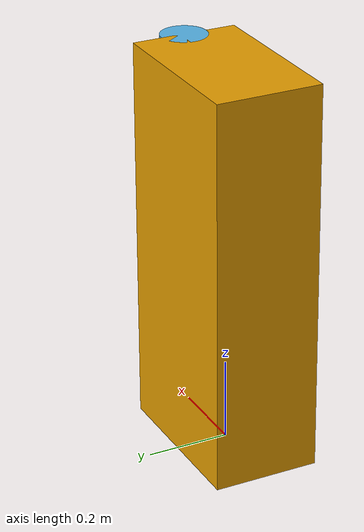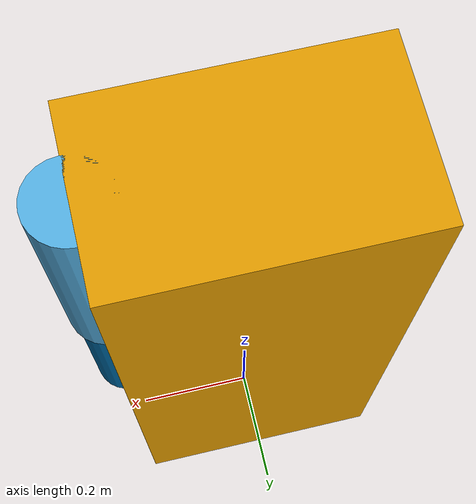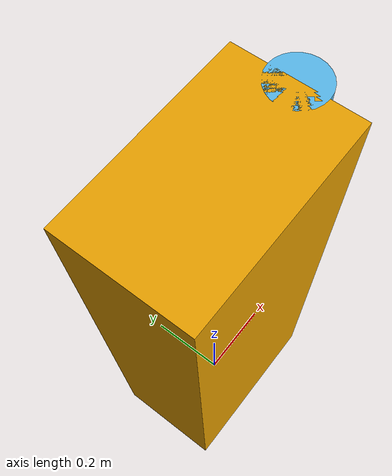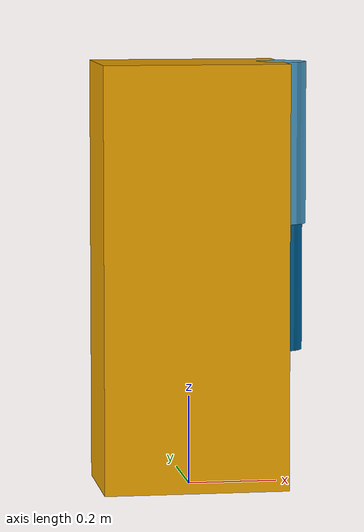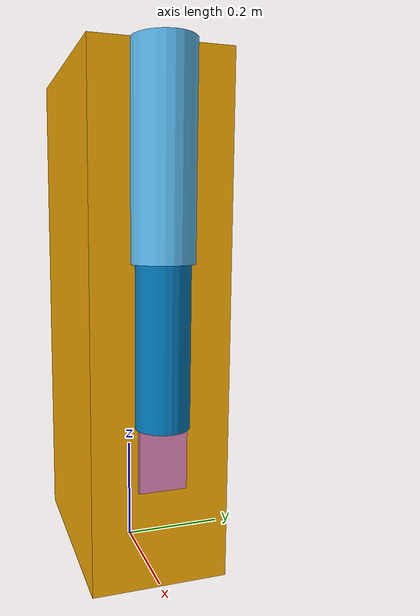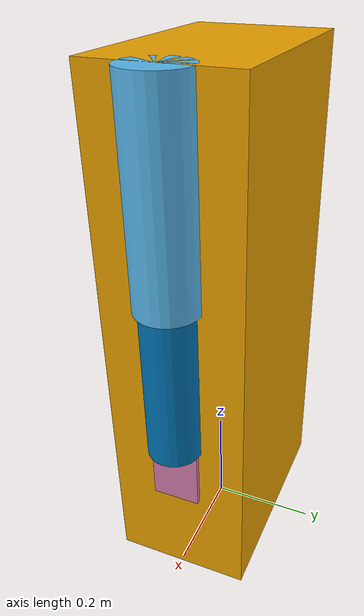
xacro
<?xml version="1.0"?>
<robot xmlns:xacro="http://www.ros.org/wiki/xacro" name="human_arm_model3">

    <xacro:include filename="model3_folder/macros2.urdf.xacro"/>
    <xacro:include filename="$(find human_arm_model)/urdf/constants.urdf.xacro" />

    <link name="${prefix}torso">
        <visual>
            <geometry>
                <!-- Bullshit limit for now  -->
                <box size="${2*clavicle_link_length} ${0.2+ upperarm_circumference/ (2* math.pi)} ${2*waist_back_length}"/>
            </geometry>
            <origin xyz="0.0 0.0 ${waist_back_length}"/>
        </visual>
        <collision>
            <geometry>
                <!-- Bullshit limit for now  -->
                <box size="${2*clavicle_link_length} ${0.2+ upperarm_circumference/ (2* math.pi)} ${2*waist_back_length}"/>
            </geometry>
            <origin xyz="0.0 0.0 ${waist_back_length}"/>
        </collision>
    </link>

    <xacro:cylinder_link_template2 name="upperarm" mass="${upperarm_weight}" radius="${upperarm_radius}" height="${upperarm_length}">
        <origin xyz="0.0 0.0 ${-upperarm_length/2}" rpy="0.0 0.0 0.0"/>
    </xacro:cylinder_link_template2>

    <xacro:include filename="model3_folder/shoulder.urdf.xacro"/>

    <xacro:cylinder_link_template2 name="forearm" mass="${forearm_weight}" radius="${forearm_circumference / (2*math.pi)}" height="${elbow_wrist_length}">
        <origin xyz="0.0 0.0 ${-elbow_wrist_length/2}" rpy="0.0 0.0 0.0"/>
    </xacro:cylinder_link_template2>

    <xacro:include filename="model3_folder/elbow.urdf.xacro"/>

    <xacro:include filename="model3_folder/endeffector.urdf.xacro"/>

</robot>

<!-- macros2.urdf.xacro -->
<robot xmlns:xacro="http://www.ros.org/wiki/xacro">

    <xacro:arg name="model_id" default="model1"/>
    <xacro:arg name="side" default="right"/>
    <xacro:property name="prefix" value="$(arg model_id)_$(arg side)_" />

    <!-- Minimal Inertia for Links without physical structure -->
    <xacro:macro name="minimal_inertia">
        <inertial>
            <origin xyz="0.0 0.0 0.0" rpy="0.0 0.0 0.0"/>
            <mass value="0.01"/>
            <inertia ixx="0.001" ixy="0.0" ixz="0.0" iyy="0.001" iyz="0.0" izz="0.001"/>
        </inertial>
    </xacro:macro>
    <!-- Inertia for a cylinder  -->
    <xacro:macro name="cylinder_inertia2" params="m r h">
        <inertial>
            <mass value="${m}"/>
            <inertia ixx="${(1/12)* m*(3*r*r + h*h) }" ixy="0.0" ixz="0.0" iyy="${(1/12)* m*(3*r*r + h*h) }" iyz="0.0" izz="${(1/2)*m*r*r}" />
        </inertial>
    </xacro:macro>

    <!-- Inertia for a box  -->
    <xacro:macro name="box_inertia" params="m x y z">
        <inertial>
            <mass value="${m}"/>
            <inertia ixx="${(1/12)* m*(y*y + z*z) }" ixy="0.0" ixz="0.0" iyy="${(1/12)* m*(x*x + z*z) }" iyz="0.0" izz="${(1/12)*m* (x*x + y*y)}" />
        </inertial>
    </xacro:macro>

    <!-- Template for a revolute joint -->
    <xacro:macro name="joint_template2" params="bodypart suffix parent child *origin *axis *limit">
        <joint name="${prefix}${bodypart}_${suffix}_joint" type="revolute">
            <parent link="${prefix}${parent}"/>
            <child link="${prefix}${child}" />
            <xacro:insert_block name="origin"/>
            <xacro:insert_block name="axis"/>
            <xacro:insert_block name="limit"/>
        </joint>
    </xacro:macro>

    <!-- Template for a cylindrical link that includes inertia  -->
    <xacro:macro name="cylinder_link_template2"  params="name mass radius height *origin ">
        <link name="${prefix}${name}">
            <visual>
                <geometry>
                    <cylinder length="${height}" radius="${radius}"/>
                </geometry>
                <xacro:insert_block name="origin"/>
            </visual>
            <collision>
                <xacro:insert_block name="origin"/>
                <geometry>
                    <cylinder length="${height}" radius="${radius}"/>
                </geometry>
            </collision>

            <xacro:cylinder_inertia2 m="${mass}" r="${radius}" h="${height}"/>
        </link>
    </xacro:macro>

</robot>

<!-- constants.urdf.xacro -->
<robot xmlns:xacro="http://www.ros.org/wiki/xacro">

    <xacro:include filename="macros.urdf.xacro" />

    <!-- sizes -->
    <xacro:property name="upperarm_length" value="0.3637"/>
    <xacro:property name="elbow_wrist_length" value="0.2869"/>
    <xacro:property name="upperarm_circumference" value="0.3581"/>
    <xacro:property name="wrist_circumference" value="0.1759"/>
    <xacro:property name="forearm_circumference" value="0.3101"/>
    <xacro:property name="can_radius" value="0.035"/>
    <xacro:property name="can_height" value="0.12" />
    <xacro:property name="hand_circumference" value="0.2123"/>
    <!-- Length of handpalm which might be approx. center of can: -->
    <xacro:property name="hand_length" value="0.1165" />
    <xacro:property name="hand_thickness" value="${(hand_circumference-2*hand_width)/2}" />
    <xacro:property name="hand_width" value="0.0883" />

    <xacro:property name="waist_back_length" value="0.4776" />
    <xacro:property name="shoulder_length" value="0.1498" />
    <xacro:property name="clavicle_link_length" value="0.2081" />
    <xacro:property name="sternum_radius" value="${clavicle_link_length - shoulder_length}" />
    <xacro:property name="clavicle_raidus" value="0.015"/>

    <!-- Winkel -->
    <!-- Diese sind Bewegungsamplituden und nicht 1:1 im Model vorwendbar. -->
    <xacro:property name="shoulder_ab_min" value="${-10*math.pi/180}" />
    <xacro:property name="shoulder_ab_max" value="${170*math.pi/180}" />
    <xacro:property name="shoulder_flex_min" value="${-60*math.pi/180}" />
    <xacro:property name="shoulder_flex_max" value="${170*math.pi/180}" />
    <xacro:property name="shoulder_rot_min" value="${-60*math.pi/180}" />
    <xacro:property name="shoulder_rot_max" value="${90*math.pi/180}" />
    <xacro:property name="elbow_flex_min" value="${-90*math.pi/180}" />
    <xacro:property name="elbow_flex_max" value="${60*math.pi/180}" />

    <!-- calculated values -->
    <xacro:property name="upperarm_radius" value="${upperarm_circumference/(2* math.pi)}"/>

    <!-- angles from anatomy book -->
    <xacro:property name="hand_palmarflexion" value="${-85*math.pi /180}" />
    <xacro:property name="hand_dorsalextension" value="${85*math.pi /180}" />

    <!-- Sternoklavikularjoint -->
    <xacro:property name="Sternoklavikularjoint_elevation" value="${30*math.pi/180}"/>
    <xacro:property name="Sternoklavikularjoint_depression" value="${-5*math.pi/180}" />
    <xacro:property name="Sternoklavikularjoint_protraktion" value="${30*math.pi/180}"/>
    <xacro:property name="Sternoklavikularjoint_retraktion" value="${-30*math.pi/180}" />
    <xacro:property name="Sternoklavikularjoint_anteriorrotation" value="${30*math.pi/180}"/>
    <xacro:property name="Sternoklavikularjoint_posteriorrotation" value="${-30*math.pi/180}" />

    <!-- Glenohumeraljoint -->
    <xacro:property name="glenohumeraljoint_abduktion" value="${90*math.pi/180}" />
    <xacro:property name="glenohumeraljoint_adduktion" value="${0*math.pi/180}" />
    <xacro:property name="glenohumeraljoint_anteversion" value="${80*math.pi/180}" />
    <xacro:property name="glenohumeraljoint_retroversion" value="${-40*math.pi/180}" />
    <xacro:property name="glenohumeraljoint_exorotation" value="${60*math.pi/180}" />
    <xacro:property name="glenohumeraljoint_endorotation" value="${-100*math.pi/180}" />

    <!-- Humeroulnarjoint -->
    <xacro:property name="humeroulnarjoint_flexion" value="${160*math.pi/180}" />
    <xacro:property name="humeroulnarjoint_extension" value="${-15*math.pi/180}" />
    <xacro:property name="humeroulnarjoint_pronation" value="${85*math.pi/180}" />
    <xacro:property name="humeroulnarjoint_supination" value="${-90*math.pi/180}" />

    <!-- weights as percentage of whole body -->
    <xacro:property name="bodyweight" value="85.8"/>
    <xacro:property name="upperarm_weight" value="${bodyweight * 0.029}"/>
    <xacro:property name="forearm_weight" value="${bodyweight * 0.017}" />
    <xacro:property name="hand_weight" value="${bodyweight * 0.007}" />

    <xacro:property name="can_weight" value="0.45"/>

    <xacro:arg name="side" default="right"/>
    <xacro:if value="${'$(arg side)'=='right'}">
        <xacro:property name="right" value="-1"/>
    </xacro:if>
    <xacro:unless value="${'$(arg side)'=='right'}">
        <xacro:property name="right" value="1"/>
    </xacro:unless>

</robot>

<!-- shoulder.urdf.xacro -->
<robot xmlns:xacro="http://www.ros.org/wiki/xacro" name="human_arm_model">

    <xacro:include filename="$(find human_arm_model)/urdf/constants.urdf.xacro" />
    <xacro:include filename="macros2.urdf.xacro" />

    <link name="${prefix}shoulder_1">
        <xacro:minimal_inertia />
    </link>
    <link name="${prefix}shoulder_2">
        <xacro:minimal_inertia />
    </link>

    <xacro:joint_template2 bodypart="shoulder" suffix="rotation" parent="torso" child="shoulder_1" >
        <origin xyz="${clavicle_link_length} 0.0 ${2*waist_back_length}" rpy="0.0 0.0 0.0" />
        <axis xyz="0.0 0.0 1.0" />
                <limit effort="1000.0" lower="${glenohumeraljoint_endorotation}" upper="${glenohumeraljoint_exorotation}" velocity="0.5" />
    </xacro:joint_template2>

    <xacro:joint_template2 bodypart="shoulder" suffix="abduction" parent="shoulder_1" child="shoulder_2">
        <origin xyz="0.0 0.0 0.0" />
        <axis xyz="0.0 -1.0 0.0" />
        <limit effort="1000.0" lower="${shoulder_ab_min}" upper="${shoulder_ab_max}" velocity="0.5" />
    </xacro:joint_template2>

    <xacro:joint_template2 bodypart="shoulder" suffix="flexion" parent="shoulder_2" child="upperarm">
        <origin xyz="0.0 0.0 0.0" />
        <axis xyz="1.0 0.0 0.0" />
        <limit effort="1000.0" lower="${shoulder_flex_min}" upper="${shoulder_flex_max}" velocity="0.5" />
    </xacro:joint_template2>

</robot>

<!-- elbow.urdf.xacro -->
<robot xmlns:xacro="http://www.ros.org/wiki/xacro" name="human_arm_model">

    <xacro:include filename="$(find human_arm_model)/urdf/constants.urdf.xacro" />
    <xacro:include filename="macros2.urdf.xacro" />

    <link name="${prefix}elbow_1">
        <xacro:minimal_inertia />
    </link>

    <xacro:joint_template2 bodypart="elbow" suffix="flexion" parent="upperarm" child="elbow_1">
        <origin xyz="0.0 0.0 ${-upperarm_length}"/>
        <axis xyz="1.0 0.0 0.0" />
        <limit effort="1000.0" lower="${humeroulnarjoint_extension}" upper="${humeroulnarjoint_flexion}" velocity="0.5" />
    </xacro:joint_template2>

    <xacro:joint_template2 bodypart="elbow" suffix="rotation" parent="elbow_1" child="forearm">
        <origin xyz="0.0 0.0 0.0"/>
        <axis xyz="0.0 0.0 1.0" />
        <limit effort="1000.0" lower="${humeroulnarjoint_supination}" upper="${humeroulnarjoint_pronation}" velocity="0.5" />
    </xacro:joint_template2>

</robot>

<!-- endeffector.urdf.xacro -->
<robot xmlns:xacro="http://www.ros.org/wiki/xacro" name="human_arm_model">

    <xacro:include filename="$(find human_arm_model)/urdf/constants.urdf.xacro" />
    <xacro:include filename="macros2.urdf.xacro" />

    <link name="${prefix}hand">
        <visual>
            <geometry>
                <box size="${hand_thickness} ${hand_length} ${hand_width}"/>
            </geometry>
            <origin xyz="0.0 0.0 ${-hand_length/2}" rpy="${90*math.pi/180} 0.0 0.0"/>
        </visual>
        <collision>
            <geometry>
                <box size="${hand_thickness} ${hand_length} ${hand_width}"/>
            </geometry>
            <origin xyz="0.0 0.0 ${-hand_length/2}" rpy="${90*math.pi/180} 0.0 0.0"/>
        </collision>
        <xacro:box_inertia m="${hand_weight}" x="${hand_thickness}" y="${hand_length}" z="${hand_width}" />
    </link>

    <xacro:joint_template2 bodypart="wrist" suffix="flexion" parent="forearm" child="hand">
        <origin xyz="0.0 0.0 ${-elbow_wrist_length}"/>
        <axis xyz="0.0 1.0 0.0" />
        <limit effort="1000.0" lower="${hand_palmarflexion}" upper="${hand_dorsalextension}" velocity="0.5" />
    </xacro:joint_template2>

    <xacro:cylinder_link_template2 name="can" mass="${can_weight}" radius="${can_radius}" height="${can_height}">
        <origin xyz="0.0 ${-can_height/2} 0.0" rpy="${90*math.pi/180} 0.0 0.0"/>
    </xacro:cylinder_link_template2>

    <joint name="${prefix}hand_can_joint" type="fixed">
        <parent link="${prefix}hand"/>
        <child link="${prefix}can"/>
        <origin xyz="${-can_radius-(hand_thickness/2)} ${can_height/2} ${-hand_length}"/>
    </joint>

</robot>
